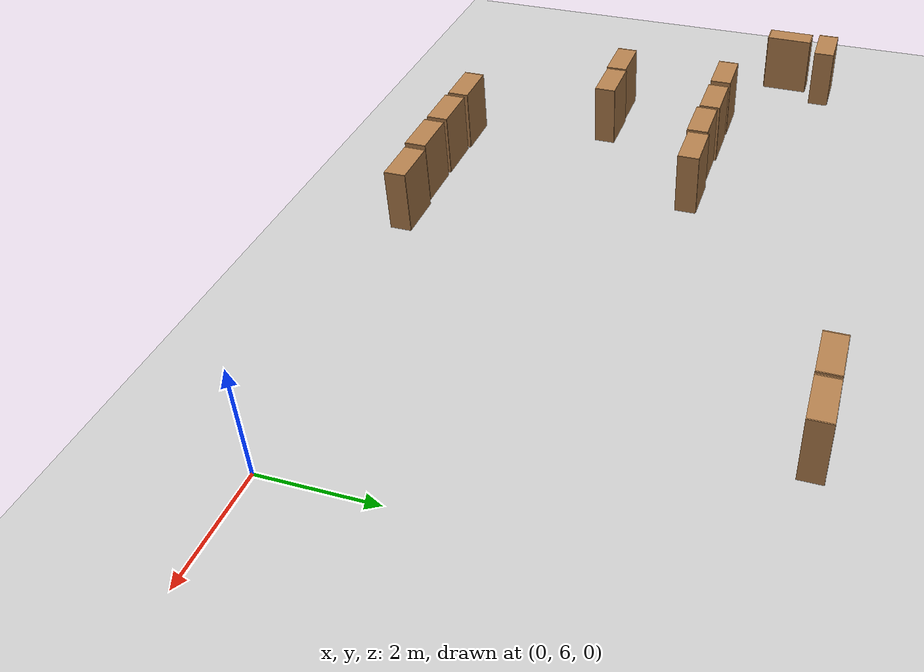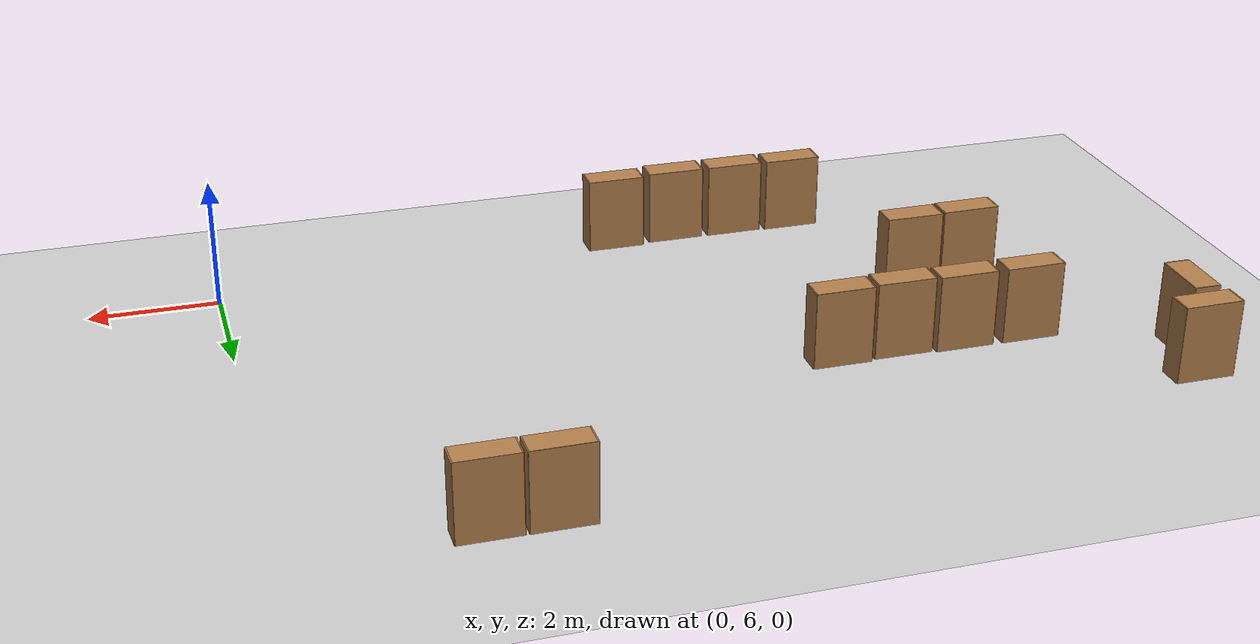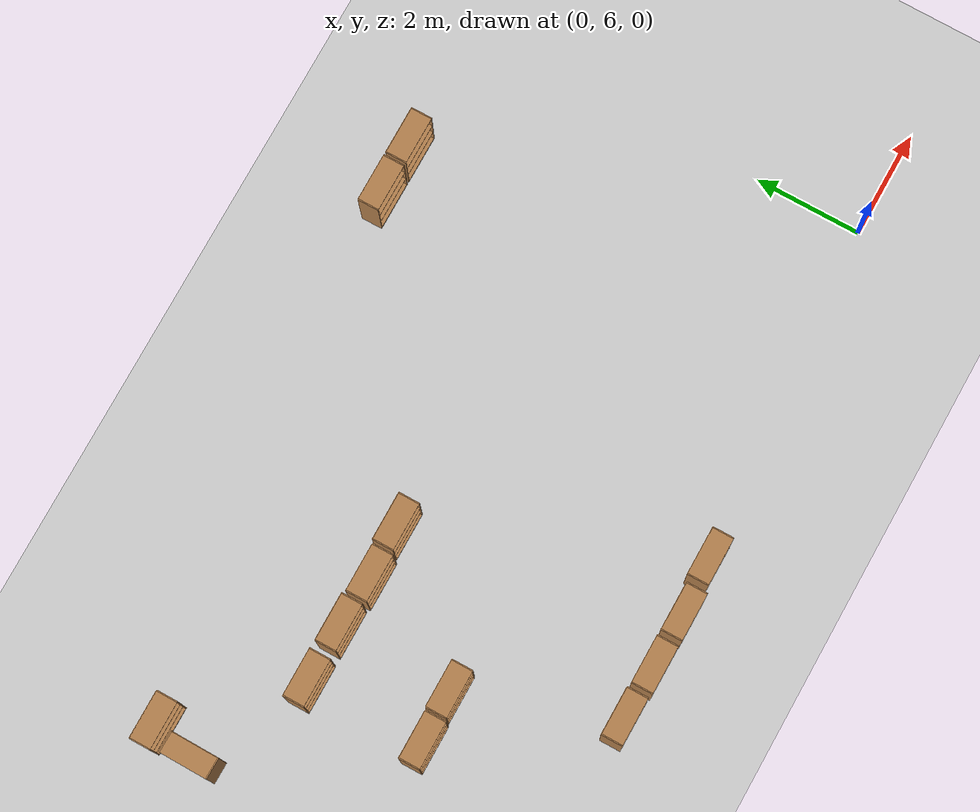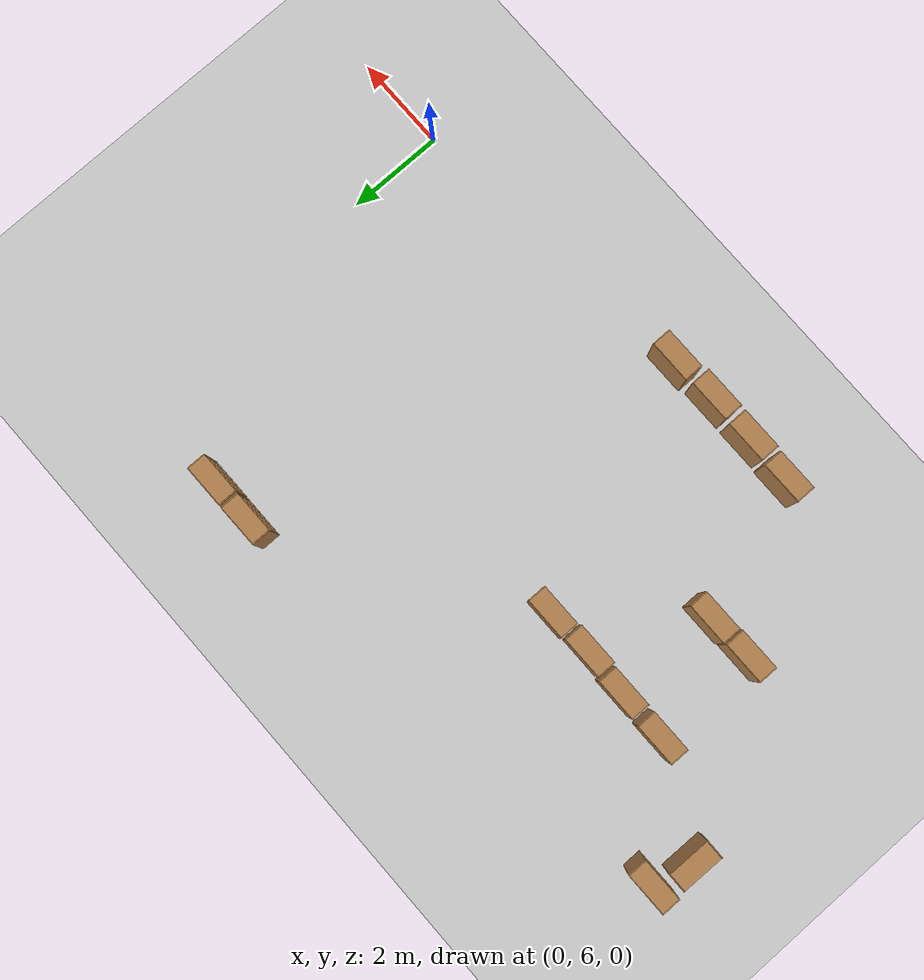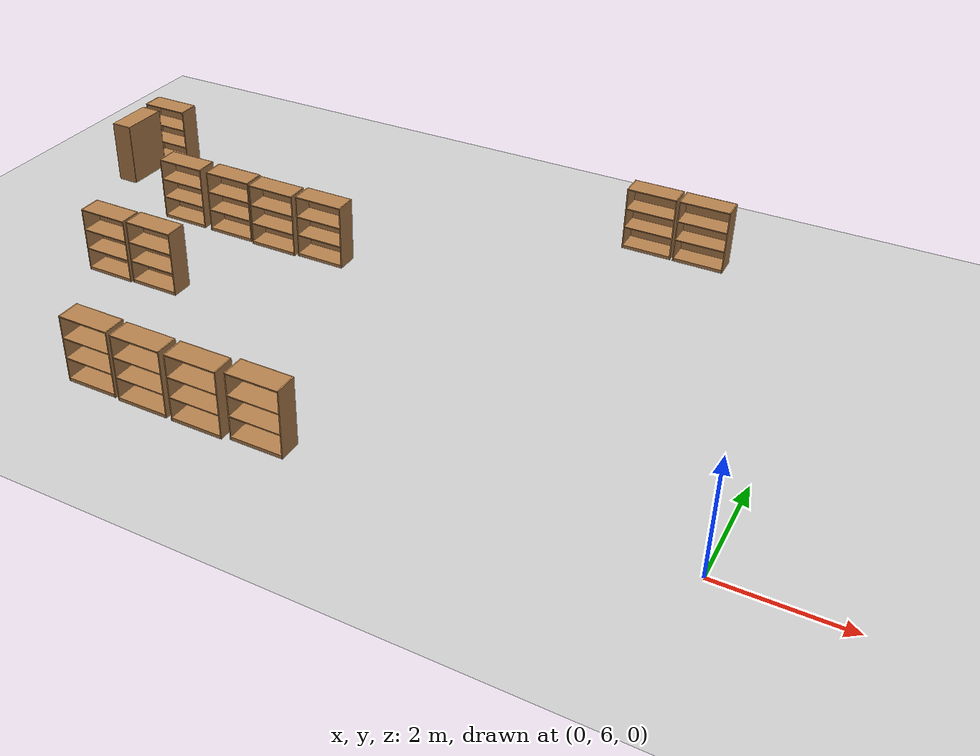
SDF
<sdf version="1.6">
 <world name="default">
  <model name="ground_plane">
   <static>1</static>
   <link name="link">
    <collision name="collision">
     <geometry><plane><normal>0 0 1</normal><size>100 100</size></plane></geometry>
     <surface>
      <contact><collide_bitmask>65535</collide_bitmask></contact>
      <friction><ode><mu>100</mu><mu2>50</mu2></ode></friction>
     </surface>
    </collision>
    <visual name="visual">
     <cast_shadows>0</cast_shadows>
     <geometry><plane><normal>0 0 1</normal><size>100 100</size></plane></geometry>
     <material>
      <script><uri>file://media/materials/scripts/gazebo.material</uri><name>Gazebo/Grey</name></script>
     </material>
    </visual>
   </link>
  </model>
  <model name="bookshelf_clone">
   <static>1</static>
   <link name="link">
    <inertial><mass>1</mass></inertial>
    <collision name="back">
     <pose>0 0.005 0.6 0 -0 0</pose>
     <geometry><box><size>0.9 0.01 1.2</size></box></geometry>
    </collision>
    <visual name="visual1">
     <pose>0 0.005 0.6 0 -0 0</pose>
     <geometry><box><size>0.9 0.01 1.2</size></box></geometry>
     <material>
      <script><uri>file://media/materials/scripts/gazebo.material</uri><name>Gazebo/Wood</name></script>
     </material>
    </visual>
    <collision name="left_side">
     <pose>0.45 -0.195 0.6 0 -0 0</pose>
     <geometry><box><size>0.02 0.4 1.2</size></box></geometry>
    </collision>
    <visual name="visual2">
     <pose>0.45 -0.195 0.6 0 -0 0</pose>
     <geometry><box><size>0.02 0.4 1.2</size></box></geometry>
     <material>
      <script><uri>file://media/materials/scripts/gazebo.material</uri><name>Gazebo/Wood</name></script>
     </material>
    </visual>
    <collision name="right_side">
     <pose>-0.45 -0.195 0.6 0 -0 0</pose>
     <geometry><box><size>0.02 0.4 1.2</size></box></geometry>
    </collision>
    <visual name="visual3">
     <pose>-0.45 -0.195 0.6 0 -0 0</pose>
     <geometry><box><size>0.02 0.4 1.2</size></box></geometry>
     <material>
      <script><uri>file://media/materials/scripts/gazebo.material</uri><name>Gazebo/Wood</name></script>
     </material>
    </visual>
    <collision name="bottom">
     <pose>0 -0.195 0.03 0 -0 0</pose>
     <geometry><box><size>0.88 0.4 0.06</size></box></geometry>
    </collision>
    <visual name="visual4">
     <pose>0 -0.195 0.03 0 -0 0</pose>
     <geometry><box><size>0.88 0.4 0.06</size></box></geometry>
     <material>
      <script><uri>file://media/materials/scripts/gazebo.material</uri><name>Gazebo/Wood</name></script>
     </material>
    </visual>
    <collision name="top">
     <pose>0 -0.195 1.19 0 -0 0</pose>
     <geometry><box><size>0.88 0.4 0.02</size></box></geometry>
    </collision>
    <visual name="visual5">
     <pose>0 -0.195 1.19 0 -0 0</pose>
     <geometry><box><size>0.88 0.4 0.02</size></box></geometry>
     <material>
      <script><uri>file://media/materials/scripts/gazebo.material</uri><name>Gazebo/Wood</name></script>
     </material>
    </visual>
    <collision name="low_shelf">
     <pose>0 -0.195 0.43 0 -0 0</pose>
     <geometry><box><size>0.88 0.4 0.02</size></box></geometry>
    </collision>
    <visual name="visual6">
     <pose>0 -0.195 0.43 0 -0 0</pose>
     <geometry><box><size>0.88 0.4 0.02</size></box></geometry>
     <material>
      <script><uri>file://media/materials/scripts/gazebo.material</uri><name>Gazebo/Wood</name></script>
     </material>
    </visual>
    <collision name="high_shelf">
     <pose>0 -0.195 0.8 0 -0 0</pose>
     <geometry><box><size>0.88 0.4 0.02</size></box></geometry>
    </collision>
    <visual name="visual7">
     <pose>0 -0.195 0.8 0 -0 0</pose>
     <geometry><box><size>0.88 0.4 0.02</size></box></geometry>
     <material>
      <script><uri>file://media/materials/scripts/gazebo.material</uri><name>Gazebo/Wood</name></script>
     </material>
    </visual>
   </link>
   <pose>-11.4672 8.45136 0 0 -0 0</pose>
  </model>
  <model name="bookshelf_clone_clone">
   <static>1</static>
   <link name="link">
    <inertial><mass>1</mass></inertial>
    <collision name="back">
     <pose>0 0.005 0.6 0 -0 0</pose>
     <geometry><box><size>0.9 0.01 1.2</size></box></geometry>
    </collision>
    <visual name="visual1">
     <pose>0 0.005 0.6 0 -0 0</pose>
     <geometry><box><size>0.9 0.01 1.2</size></box></geometry>
     <material>
      <script><uri>file://media/materials/scripts/gazebo.material</uri><name>Gazebo/Wood</name></script>
     </material>
    </visual>
    <collision name="left_side">
     <pose>0.45 -0.195 0.6 0 -0 0</pose>
     <geometry><box><size>0.02 0.4 1.2</size></box></geometry>
    </collision>
    <visual name="visual2">
     <pose>0.45 -0.195 0.6 0 -0 0</pose>
     <geometry><box><size>0.02 0.4 1.2</size></box></geometry>
     <material>
      <script><uri>file://media/materials/scripts/gazebo.material</uri><name>Gazebo/Wood</name></script>
     </material>
    </visual>
    <collision name="right_side">
     <pose>-0.45 -0.195 0.6 0 -0 0</pose>
     <geometry><box><size>0.02 0.4 1.2</size></box></geometry>
    </collision>
    <visual name="visual3">
     <pose>-0.45 -0.195 0.6 0 -0 0</pose>
     <geometry><box><size>0.02 0.4 1.2</size></box></geometry>
     <material>
      <script><uri>file://media/materials/scripts/gazebo.material</uri><name>Gazebo/Wood</name></script>
     </material>
    </visual>
    <collision name="bottom">
     <pose>0 -0.195 0.03 0 -0 0</pose>
     <geometry><box><size>0.88 0.4 0.06</size></box></geometry>
    </collision>
    <visual name="visual4">
     <pose>0 -0.195 0.03 0 -0 0</pose>
     <geometry><box><size>0.88 0.4 0.06</size></box></geometry>
     <material>
      <script><uri>file://media/materials/scripts/gazebo.material</uri><name>Gazebo/Wood</name></script>
     </material>
    </visual>
    <collision name="top">
     <pose>0 -0.195 1.19 0 -0 0</pose>
     <geometry><box><size>0.88 0.4 0.02</size></box></geometry>
    </collision>
    <visual name="visual5">
     <pose>0 -0.195 1.19 0 -0 0</pose>
     <geometry><box><size>0.88 0.4 0.02</size></box></geometry>
     <material>
      <script><uri>file://media/materials/scripts/gazebo.material</uri><name>Gazebo/Wood</name></script>
     </material>
    </visual>
    <collision name="low_shelf">
     <pose>0 -0.195 0.43 0 -0 0</pose>
     <geometry><box><size>0.88 0.4 0.02</size></box></geometry>
    </collision>
    <visual name="visual6">
     <pose>0 -0.195 0.43 0 -0 0</pose>
     <geometry><box><size>0.88 0.4 0.02</size></box></geometry>
     <material>
      <script><uri>file://media/materials/scripts/gazebo.material</uri><name>Gazebo/Wood</name></script>
     </material>
    </visual>
    <collision name="high_shelf">
     <pose>0 -0.195 0.8 0 -0 0</pose>
     <geometry><box><size>0.88 0.4 0.02</size></box></geometry>
    </collision>
    <visual name="visual7">
     <pose>0 -0.195 0.8 0 -0 0</pose>
     <geometry><box><size>0.88 0.4 0.02</size></box></geometry>
     <material>
      <script><uri>file://media/materials/scripts/gazebo.material</uri><name>Gazebo/Wood</name></script>
     </material>
    </visual>
   </link>
   <pose>-10.5181 8.47539 0 0 -0 0</pose>
  </model>
  <model name="bookshelf_clone_0">
   <static>1</static>
   <link name="link">
    <inertial><mass>1</mass></inertial>
    <collision name="back">
     <pose>0 0.005 0.6 0 -0 0</pose>
     <geometry><box><size>0.9 0.01 1.2</size></box></geometry>
    </collision>
    <visual name="visual1">
     <pose>0 0.005 0.6 0 -0 0</pose>
     <geometry><box><size>0.9 0.01 1.2</size></box></geometry>
     <material>
      <script><uri>file://media/materials/scripts/gazebo.material</uri><name>Gazebo/Wood</name></script>
     </material>
    </visual>
    <collision name="left_side">
     <pose>0.45 -0.195 0.6 0 -0 0</pose>
     <geometry><box><size>0.02 0.4 1.2</size></box></geometry>
    </collision>
    <visual name="visual2">
     <pose>0.45 -0.195 0.6 0 -0 0</pose>
     <geometry><box><size>0.02 0.4 1.2</size></box></geometry>
     <material>
      <script><uri>file://media/materials/scripts/gazebo.material</uri><name>Gazebo/Wood</name></script>
     </material>
    </visual>
    <collision name="right_side">
     <pose>-0.45 -0.195 0.6 0 -0 0</pose>
     <geometry><box><size>0.02 0.4 1.2</size></box></geometry>
    </collision>
    <visual name="visual3">
     <pose>-0.45 -0.195 0.6 0 -0 0</pose>
     <geometry><box><size>0.02 0.4 1.2</size></box></geometry>
     <material>
      <script><uri>file://media/materials/scripts/gazebo.material</uri><name>Gazebo/Wood</name></script>
     </material>
    </visual>
    <collision name="bottom">
     <pose>0 -0.195 0.03 0 -0 0</pose>
     <geometry><box><size>0.88 0.4 0.06</size></box></geometry>
    </collision>
    <visual name="visual4">
     <pose>0 -0.195 0.03 0 -0 0</pose>
     <geometry><box><size>0.88 0.4 0.06</size></box></geometry>
     <material>
      <script><uri>file://media/materials/scripts/gazebo.material</uri><name>Gazebo/Wood</name></script>
     </material>
    </visual>
    <collision name="top">
     <pose>0 -0.195 1.19 0 -0 0</pose>
     <geometry><box><size>0.88 0.4 0.02</size></box></geometry>
    </collision>
    <visual name="visual5">
     <pose>0 -0.195 1.19 0 -0 0</pose>
     <geometry><box><size>0.88 0.4 0.02</size></box></geometry>
     <material>
      <script><uri>file://media/materials/scripts/gazebo.material</uri><name>Gazebo/Wood</name></script>
     </material>
    </visual>
    <collision name="low_shelf">
     <pose>0 -0.195 0.43 0 -0 0</pose>
     <geometry><box><size>0.88 0.4 0.02</size></box></geometry>
    </collision>
    <visual name="visual6">
     <pose>0 -0.195 0.43 0 -0 0</pose>
     <geometry><box><size>0.88 0.4 0.02</size></box></geometry>
     <material>
      <script><uri>file://media/materials/scripts/gazebo.material</uri><name>Gazebo/Wood</name></script>
     </material>
    </visual>
    <collision name="high_shelf">
     <pose>0 -0.195 0.8 0 -0 0</pose>
     <geometry><box><size>0.88 0.4 0.02</size></box></geometry>
    </collision>
    <visual name="visual7">
     <pose>0 -0.195 0.8 0 -0 0</pose>
     <geometry><box><size>0.88 0.4 0.02</size></box></geometry>
     <material>
      <script><uri>file://media/materials/scripts/gazebo.material</uri><name>Gazebo/Wood</name></script>
     </material>
    </visual>
   </link>
   <pose>-13.3299 12.5056 0 0 -0 0</pose>
  </model>
  <model name="bookshelf_clone_0_clone">
   <static>1</static>
   <link name="link">
    <inertial><mass>1</mass></inertial>
    <collision name="back">
     <pose>0 0.005 0.6 0 -0 0</pose>
     <geometry><box><size>0.9 0.01 1.2</size></box></geometry>
    </collision>
    <visual name="visual1">
     <pose>0 0.005 0.6 0 -0 0</pose>
     <geometry><box><size>0.9 0.01 1.2</size></box></geometry>
     <material>
      <script><uri>file://media/materials/scripts/gazebo.material</uri><name>Gazebo/Wood</name></script>
     </material>
    </visual>
    <collision name="left_side">
     <pose>0.45 -0.195 0.6 0 -0 0</pose>
     <geometry><box><size>0.02 0.4 1.2</size></box></geometry>
    </collision>
    <visual name="visual2">
     <pose>0.45 -0.195 0.6 0 -0 0</pose>
     <geometry><box><size>0.02 0.4 1.2</size></box></geometry>
     <material>
      <script><uri>file://media/materials/scripts/gazebo.material</uri><name>Gazebo/Wood</name></script>
     </material>
    </visual>
    <collision name="right_side">
     <pose>-0.45 -0.195 0.6 0 -0 0</pose>
     <geometry><box><size>0.02 0.4 1.2</size></box></geometry>
    </collision>
    <visual name="visual3">
     <pose>-0.45 -0.195 0.6 0 -0 0</pose>
     <geometry><box><size>0.02 0.4 1.2</size></box></geometry>
     <material>
      <script><uri>file://media/materials/scripts/gazebo.material</uri><name>Gazebo/Wood</name></script>
     </material>
    </visual>
    <collision name="bottom">
     <pose>0 -0.195 0.03 0 -0 0</pose>
     <geometry><box><size>0.88 0.4 0.06</size></box></geometry>
    </collision>
    <visual name="visual4">
     <pose>0 -0.195 0.03 0 -0 0</pose>
     <geometry><box><size>0.88 0.4 0.06</size></box></geometry>
     <material>
      <script><uri>file://media/materials/scripts/gazebo.material</uri><name>Gazebo/Wood</name></script>
     </material>
    </visual>
    <collision name="top">
     <pose>0 -0.195 1.19 0 -0 0</pose>
     <geometry><box><size>0.88 0.4 0.02</size></box></geometry>
    </collision>
    <visual name="visual5">
     <pose>0 -0.195 1.19 0 -0 0</pose>
     <geometry><box><size>0.88 0.4 0.02</size></box></geometry>
     <material>
      <script><uri>file://media/materials/scripts/gazebo.material</uri><name>Gazebo/Wood</name></script>
     </material>
    </visual>
    <collision name="low_shelf">
     <pose>0 -0.195 0.43 0 -0 0</pose>
     <geometry><box><size>0.88 0.4 0.02</size></box></geometry>
    </collision>
    <visual name="visual6">
     <pose>0 -0.195 0.43 0 -0 0</pose>
     <geometry><box><size>0.88 0.4 0.02</size></box></geometry>
     <material>
      <script><uri>file://media/materials/scripts/gazebo.material</uri><name>Gazebo/Wood</name></script>
     </material>
    </visual>
    <collision name="high_shelf">
     <pose>0 -0.195 0.8 0 -0 0</pose>
     <geometry><box><size>0.88 0.4 0.02</size></box></geometry>
    </collision>
    <visual name="visual7">
     <pose>0 -0.195 0.8 0 -0 0</pose>
     <geometry><box><size>0.88 0.4 0.02</size></box></geometry>
     <material>
      <script><uri>file://media/materials/scripts/gazebo.material</uri><name>Gazebo/Wood</name></script>
     </material>
    </visual>
   </link>
   <pose>-13.352 11.5068 0 0 0 -1.58271</pose>
  </model>
  <model name="bookshelf_clone_clone_clone">
   <static>1</static>
   <link name="link">
    <inertial><mass>1</mass></inertial>
    <collision name="back">
     <pose>0 0.005 0.6 0 -0 0</pose>
     <geometry><box><size>0.9 0.01 1.2</size></box></geometry>
    </collision>
    <visual name="visual1">
     <pose>0 0.005 0.6 0 -0 0</pose>
     <geometry><box><size>0.9 0.01 1.2</size></box></geometry>
     <material>
      <script><uri>file://media/materials/scripts/gazebo.material</uri><name>Gazebo/Wood</name></script>
     </material>
    </visual>
    <collision name="left_side">
     <pose>0.45 -0.195 0.6 0 -0 0</pose>
     <geometry><box><size>0.02 0.4 1.2</size></box></geometry>
    </collision>
    <visual name="visual2">
     <pose>0.45 -0.195 0.6 0 -0 0</pose>
     <geometry><box><size>0.02 0.4 1.2</size></box></geometry>
     <material>
      <script><uri>file://media/materials/scripts/gazebo.material</uri><name>Gazebo/Wood</name></script>
     </material>
    </visual>
    <collision name="right_side">
     <pose>-0.45 -0.195 0.6 0 -0 0</pose>
     <geometry><box><size>0.02 0.4 1.2</size></box></geometry>
    </collision>
    <visual name="visual3">
     <pose>-0.45 -0.195 0.6 0 -0 0</pose>
     <geometry><box><size>0.02 0.4 1.2</size></box></geometry>
     <material>
      <script><uri>file://media/materials/scripts/gazebo.material</uri><name>Gazebo/Wood</name></script>
     </material>
    </visual>
    <collision name="bottom">
     <pose>0 -0.195 0.03 0 -0 0</pose>
     <geometry><box><size>0.88 0.4 0.06</size></box></geometry>
    </collision>
    <visual name="visual4">
     <pose>0 -0.195 0.03 0 -0 0</pose>
     <geometry><box><size>0.88 0.4 0.06</size></box></geometry>
     <material>
      <script><uri>file://media/materials/scripts/gazebo.material</uri><name>Gazebo/Wood</name></script>
     </material>
    </visual>
    <collision name="top">
     <pose>0 -0.195 1.19 0 -0 0</pose>
     <geometry><box><size>0.88 0.4 0.02</size></box></geometry>
    </collision>
    <visual name="visual5">
     <pose>0 -0.195 1.19 0 -0 0</pose>
     <geometry><box><size>0.88 0.4 0.02</size></box></geometry>
     <material>
      <script><uri>file://media/materials/scripts/gazebo.material</uri><name>Gazebo/Wood</name></script>
     </material>
    </visual>
    <collision name="low_shelf">
     <pose>0 -0.195 0.43 0 -0 0</pose>
     <geometry><box><size>0.88 0.4 0.02</size></box></geometry>
    </collision>
    <visual name="visual6">
     <pose>0 -0.195 0.43 0 -0 0</pose>
     <geometry><box><size>0.88 0.4 0.02</size></box></geometry>
     <material>
      <script><uri>file://media/materials/scripts/gazebo.material</uri><name>Gazebo/Wood</name></script>
     </material>
    </visual>
    <collision name="high_shelf">
     <pose>0 -0.195 0.8 0 -0 0</pose>
     <geometry><box><size>0.88 0.4 0.02</size></box></geometry>
    </collision>
    <visual name="visual7">
     <pose>0 -0.195 0.8 0 -0 0</pose>
     <geometry><box><size>0.88 0.4 0.02</size></box></geometry>
     <material>
      <script><uri>file://media/materials/scripts/gazebo.material</uri><name>Gazebo/Wood</name></script>
     </material>
    </visual>
   </link>
   <pose>-3.50081 13.74 0 0 -0 0</pose>
  </model>
  <model name="bookshelf_clone_clone_clone_0">
   <static>1</static>
   <link name="link">
    <inertial><mass>1</mass></inertial>
    <collision name="back">
     <pose>0 0.005 0.6 0 -0 0</pose>
     <geometry><box><size>0.9 0.01 1.2</size></box></geometry>
    </collision>
    <visual name="visual1">
     <pose>0 0.005 0.6 0 -0 0</pose>
     <geometry><box><size>0.9 0.01 1.2</size></box></geometry>
     <material>
      <script><uri>file://media/materials/scripts/gazebo.material</uri><name>Gazebo/Wood</name></script>
     </material>
    </visual>
    <collision name="left_side">
     <pose>0.45 -0.195 0.6 0 -0 0</pose>
     <geometry><box><size>0.02 0.4 1.2</size></box></geometry>
    </collision>
    <visual name="visual2">
     <pose>0.45 -0.195 0.6 0 -0 0</pose>
     <geometry><box><size>0.02 0.4 1.2</size></box></geometry>
     <material>
      <script><uri>file://media/materials/scripts/gazebo.material</uri><name>Gazebo/Wood</name></script>
     </material>
    </visual>
    <collision name="right_side">
     <pose>-0.45 -0.195 0.6 0 -0 0</pose>
     <geometry><box><size>0.02 0.4 1.2</size></box></geometry>
    </collision>
    <visual name="visual3">
     <pose>-0.45 -0.195 0.6 0 -0 0</pose>
     <geometry><box><size>0.02 0.4 1.2</size></box></geometry>
     <material>
      <script><uri>file://media/materials/scripts/gazebo.material</uri><name>Gazebo/Wood</name></script>
     </material>
    </visual>
    <collision name="bottom">
     <pose>0 -0.195 0.03 0 -0 0</pose>
     <geometry><box><size>0.88 0.4 0.06</size></box></geometry>
    </collision>
    <visual name="visual4">
     <pose>0 -0.195 0.03 0 -0 0</pose>
     <geometry><box><size>0.88 0.4 0.06</size></box></geometry>
     <material>
      <script><uri>file://media/materials/scripts/gazebo.material</uri><name>Gazebo/Wood</name></script>
     </material>
    </visual>
    <collision name="top">
     <pose>0 -0.195 1.19 0 -0 0</pose>
     <geometry><box><size>0.88 0.4 0.02</size></box></geometry>
    </collision>
    <visual name="visual5">
     <pose>0 -0.195 1.19 0 -0 0</pose>
     <geometry><box><size>0.88 0.4 0.02</size></box></geometry>
     <material>
      <script><uri>file://media/materials/scripts/gazebo.material</uri><name>Gazebo/Wood</name></script>
     </material>
    </visual>
    <collision name="low_shelf">
     <pose>0 -0.195 0.43 0 -0 0</pose>
     <geometry><box><size>0.88 0.4 0.02</size></box></geometry>
    </collision>
    <visual name="visual6">
     <pose>0 -0.195 0.43 0 -0 0</pose>
     <geometry><box><size>0.88 0.4 0.02</size></box></geometry>
     <material>
      <script><uri>file://media/materials/scripts/gazebo.material</uri><name>Gazebo/Wood</name></script>
     </material>
    </visual>
    <collision name="high_shelf">
     <pose>0 -0.195 0.8 0 -0 0</pose>
     <geometry><box><size>0.88 0.4 0.02</size></box></geometry>
    </collision>
    <visual name="visual7">
     <pose>0 -0.195 0.8 0 -0 0</pose>
     <geometry><box><size>0.88 0.4 0.02</size></box></geometry>
     <material>
      <script><uri>file://media/materials/scripts/gazebo.material</uri><name>Gazebo/Wood</name></script>
     </material>
    </visual>
   </link>
   <pose>-2.53899 13.7368 0 0 -0 0</pose>
  </model>
  <model name="bookshelf_clone_clone_clone_3">
   <static>1</static>
   <link name="link">
    <inertial><mass>1</mass></inertial>
    <collision name="back">
     <pose>0 0.005 0.6 0 -0 0</pose>
     <geometry><box><size>0.9 0.01 1.2</size></box></geometry>
    </collision>
    <visual name="visual1">
     <pose>0 0.005 0.6 0 -0 0</pose>
     <geometry><box><size>0.9 0.01 1.2</size></box></geometry>
     <material>
      <script><uri>file://media/materials/scripts/gazebo.material</uri><name>Gazebo/Wood</name></script>
     </material>
    </visual>
    <collision name="left_side">
     <pose>0.45 -0.195 0.6 0 -0 0</pose>
     <geometry><box><size>0.02 0.4 1.2</size></box></geometry>
    </collision>
    <visual name="visual2">
     <pose>0.45 -0.195 0.6 0 -0 0</pose>
     <geometry><box><size>0.02 0.4 1.2</size></box></geometry>
     <material>
      <script><uri>file://media/materials/scripts/gazebo.material</uri><name>Gazebo/Wood</name></script>
     </material>
    </visual>
    <collision name="right_side">
     <pose>-0.45 -0.195 0.6 0 -0 0</pose>
     <geometry><box><size>0.02 0.4 1.2</size></box></geometry>
    </collision>
    <visual name="visual3">
     <pose>-0.45 -0.195 0.6 0 -0 0</pose>
     <geometry><box><size>0.02 0.4 1.2</size></box></geometry>
     <material>
      <script><uri>file://media/materials/scripts/gazebo.material</uri><name>Gazebo/Wood</name></script>
     </material>
    </visual>
    <collision name="bottom">
     <pose>0 -0.195 0.03 0 -0 0</pose>
     <geometry><box><size>0.88 0.4 0.06</size></box></geometry>
    </collision>
    <visual name="visual4">
     <pose>0 -0.195 0.03 0 -0 0</pose>
     <geometry><box><size>0.88 0.4 0.06</size></box></geometry>
     <material>
      <script><uri>file://media/materials/scripts/gazebo.material</uri><name>Gazebo/Wood</name></script>
     </material>
    </visual>
    <collision name="top">
     <pose>0 -0.195 1.19 0 -0 0</pose>
     <geometry><box><size>0.88 0.4 0.02</size></box></geometry>
    </collision>
    <visual name="visual5">
     <pose>0 -0.195 1.19 0 -0 0</pose>
     <geometry><box><size>0.88 0.4 0.02</size></box></geometry>
     <material>
      <script><uri>file://media/materials/scripts/gazebo.material</uri><name>Gazebo/Wood</name></script>
     </material>
    </visual>
    <collision name="low_shelf">
     <pose>0 -0.195 0.43 0 -0 0</pose>
     <geometry><box><size>0.88 0.4 0.02</size></box></geometry>
    </collision>
    <visual name="visual6">
     <pose>0 -0.195 0.43 0 -0 0</pose>
     <geometry><box><size>0.88 0.4 0.02</size></box></geometry>
     <material>
      <script><uri>file://media/materials/scripts/gazebo.material</uri><name>Gazebo/Wood</name></script>
     </material>
    </visual>
    <collision name="high_shelf">
     <pose>0 -0.195 0.8 0 -0 0</pose>
     <geometry><box><size>0.88 0.4 0.02</size></box></geometry>
    </collision>
    <visual name="visual7">
     <pose>0 -0.195 0.8 0 -0 0</pose>
     <geometry><box><size>0.88 0.4 0.02</size></box></geometry>
     <material>
      <script><uri>file://media/materials/scripts/gazebo.material</uri><name>Gazebo/Wood</name></script>
     </material>
    </visual>
   </link>
   <pose>-6.46841 5.73352 0 0 -0 0</pose>
  </model>
  <model name="bookshelf_clone_clone_clone_4">
   <static>1</static>
   <link name="link">
    <inertial><mass>1</mass></inertial>
    <collision name="back">
     <pose>0 0.005 0.6 0 -0 0</pose>
     <geometry><box><size>0.9 0.01 1.2</size></box></geometry>
    </collision>
    <visual name="visual1">
     <pose>0 0.005 0.6 0 -0 0</pose>
     <geometry><box><size>0.9 0.01 1.2</size></box></geometry>
     <material>
      <script><uri>file://media/materials/scripts/gazebo.material</uri><name>Gazebo/Wood</name></script>
     </material>
    </visual>
    <collision name="left_side">
     <pose>0.45 -0.195 0.6 0 -0 0</pose>
     <geometry><box><size>0.02 0.4 1.2</size></box></geometry>
    </collision>
    <visual name="visual2">
     <pose>0.45 -0.195 0.6 0 -0 0</pose>
     <geometry><box><size>0.02 0.4 1.2</size></box></geometry>
     <material>
      <script><uri>file://media/materials/scripts/gazebo.material</uri><name>Gazebo/Wood</name></script>
     </material>
    </visual>
    <collision name="right_side">
     <pose>-0.45 -0.195 0.6 0 -0 0</pose>
     <geometry><box><size>0.02 0.4 1.2</size></box></geometry>
    </collision>
    <visual name="visual3">
     <pose>-0.45 -0.195 0.6 0 -0 0</pose>
     <geometry><box><size>0.02 0.4 1.2</size></box></geometry>
     <material>
      <script><uri>file://media/materials/scripts/gazebo.material</uri><name>Gazebo/Wood</name></script>
     </material>
    </visual>
    <collision name="bottom">
     <pose>0 -0.195 0.03 0 -0 0</pose>
     <geometry><box><size>0.88 0.4 0.06</size></box></geometry>
    </collision>
    <visual name="visual4">
     <pose>0 -0.195 0.03 0 -0 0</pose>
     <geometry><box><size>0.88 0.4 0.06</size></box></geometry>
     <material>
      <script><uri>file://media/materials/scripts/gazebo.material</uri><name>Gazebo/Wood</name></script>
     </material>
    </visual>
    <collision name="top">
     <pose>0 -0.195 1.19 0 -0 0</pose>
     <geometry><box><size>0.88 0.4 0.02</size></box></geometry>
    </collision>
    <visual name="visual5">
     <pose>0 -0.195 1.19 0 -0 0</pose>
     <geometry><box><size>0.88 0.4 0.02</size></box></geometry>
     <material>
      <script><uri>file://media/materials/scripts/gazebo.material</uri><name>Gazebo/Wood</name></script>
     </material>
    </visual>
    <collision name="low_shelf">
     <pose>0 -0.195 0.43 0 -0 0</pose>
     <geometry><box><size>0.88 0.4 0.02</size></box></geometry>
    </collision>
    <visual name="visual6">
     <pose>0 -0.195 0.43 0 -0 0</pose>
     <geometry><box><size>0.88 0.4 0.02</size></box></geometry>
     <material>
      <script><uri>file://media/materials/scripts/gazebo.material</uri><name>Gazebo/Wood</name></script>
     </material>
    </visual>
    <collision name="high_shelf">
     <pose>0 -0.195 0.8 0 -0 0</pose>
     <geometry><box><size>0.88 0.4 0.02</size></box></geometry>
    </collision>
    <visual name="visual7">
     <pose>0 -0.195 0.8 0 -0 0</pose>
     <geometry><box><size>0.88 0.4 0.02</size></box></geometry>
     <material>
      <script><uri>file://media/materials/scripts/gazebo.material</uri><name>Gazebo/Wood</name></script>
     </material>
    </visual>
   </link>
   <pose>-7.50045 5.67638 0 0 -0 0</pose>
  </model>
  <model name="bookshelf_clone_clone_clone_5">
   <static>1</static>
   <link name="link">
    <inertial><mass>1</mass></inertial>
    <collision name="back">
     <pose>0 0.005 0.6 0 -0 0</pose>
     <geometry><box><size>0.9 0.01 1.2</size></box></geometry>
    </collision>
    <visual name="visual1">
     <pose>0 0.005 0.6 0 -0 0</pose>
     <geometry><box><size>0.9 0.01 1.2</size></box></geometry>
     <material>
      <script><uri>file://media/materials/scripts/gazebo.material</uri><name>Gazebo/Wood</name></script>
     </material>
    </visual>
    <collision name="left_side">
     <pose>0.45 -0.195 0.6 0 -0 0</pose>
     <geometry><box><size>0.02 0.4 1.2</size></box></geometry>
    </collision>
    <visual name="visual2">
     <pose>0.45 -0.195 0.6 0 -0 0</pose>
     <geometry><box><size>0.02 0.4 1.2</size></box></geometry>
     <material>
      <script><uri>file://media/materials/scripts/gazebo.material</uri><name>Gazebo/Wood</name></script>
     </material>
    </visual>
    <collision name="right_side">
     <pose>-0.45 -0.195 0.6 0 -0 0</pose>
     <geometry><box><size>0.02 0.4 1.2</size></box></geometry>
    </collision>
    <visual name="visual3">
     <pose>-0.45 -0.195 0.6 0 -0 0</pose>
     <geometry><box><size>0.02 0.4 1.2</size></box></geometry>
     <material>
      <script><uri>file://media/materials/scripts/gazebo.material</uri><name>Gazebo/Wood</name></script>
     </material>
    </visual>
    <collision name="bottom">
     <pose>0 -0.195 0.03 0 -0 0</pose>
     <geometry><box><size>0.88 0.4 0.06</size></box></geometry>
    </collision>
    <visual name="visual4">
     <pose>0 -0.195 0.03 0 -0 0</pose>
     <geometry><box><size>0.88 0.4 0.06</size></box></geometry>
     <material>
      <script><uri>file://media/materials/scripts/gazebo.material</uri><name>Gazebo/Wood</name></script>
     </material>
    </visual>
    <collision name="top">
     <pose>0 -0.195 1.19 0 -0 0</pose>
     <geometry><box><size>0.88 0.4 0.02</size></box></geometry>
    </collision>
    <visual name="visual5">
     <pose>0 -0.195 1.19 0 -0 0</pose>
     <geometry><box><size>0.88 0.4 0.02</size></box></geometry>
     <material>
      <script><uri>file://media/materials/scripts/gazebo.material</uri><name>Gazebo/Wood</name></script>
     </material>
    </visual>
    <collision name="low_shelf">
     <pose>0 -0.195 0.43 0 -0 0</pose>
     <geometry><box><size>0.88 0.4 0.02</size></box></geometry>
    </collision>
    <visual name="visual6">
     <pose>0 -0.195 0.43 0 -0 0</pose>
     <geometry><box><size>0.88 0.4 0.02</size></box></geometry>
     <material>
      <script><uri>file://media/materials/scripts/gazebo.material</uri><name>Gazebo/Wood</name></script>
     </material>
    </visual>
    <collision name="high_shelf">
     <pose>0 -0.195 0.8 0 -0 0</pose>
     <geometry><box><size>0.88 0.4 0.02</size></box></geometry>
    </collision>
    <visual name="visual7">
     <pose>0 -0.195 0.8 0 -0 0</pose>
     <geometry><box><size>0.88 0.4 0.02</size></box></geometry>
     <material>
      <script><uri>file://media/materials/scripts/gazebo.material</uri><name>Gazebo/Wood</name></script>
     </material>
    </visual>
   </link>
   <pose>-8.5121 5.6838 0 0 -0 0</pose>
  </model>
  <model name="bookshelf_clone_clone_clone_6">
   <static>1</static>
   <link name="link">
    <inertial><mass>1</mass></inertial>
    <collision name="back">
     <pose>0 0.005 0.6 0 -0 0</pose>
     <geometry><box><size>0.9 0.01 1.2</size></box></geometry>
    </collision>
    <visual name="visual1">
     <pose>0 0.005 0.6 0 -0 0</pose>
     <geometry><box><size>0.9 0.01 1.2</size></box></geometry>
     <material>
      <script><uri>file://media/materials/scripts/gazebo.material</uri><name>Gazebo/Wood</name></script>
     </material>
    </visual>
    <collision name="left_side">
     <pose>0.45 -0.195 0.6 0 -0 0</pose>
     <geometry><box><size>0.02 0.4 1.2</size></box></geometry>
    </collision>
    <visual name="visual2">
     <pose>0.45 -0.195 0.6 0 -0 0</pose>
     <geometry><box><size>0.02 0.4 1.2</size></box></geometry>
     <material>
      <script><uri>file://media/materials/scripts/gazebo.material</uri><name>Gazebo/Wood</name></script>
     </material>
    </visual>
    <collision name="right_side">
     <pose>-0.45 -0.195 0.6 0 -0 0</pose>
     <geometry><box><size>0.02 0.4 1.2</size></box></geometry>
    </collision>
    <visual name="visual3">
     <pose>-0.45 -0.195 0.6 0 -0 0</pose>
     <geometry><box><size>0.02 0.4 1.2</size></box></geometry>
     <material>
      <script><uri>file://media/materials/scripts/gazebo.material</uri><name>Gazebo/Wood</name></script>
     </material>
    </visual>
    <collision name="bottom">
     <pose>0 -0.195 0.03 0 -0 0</pose>
     <geometry><box><size>0.88 0.4 0.06</size></box></geometry>
    </collision>
    <visual name="visual4">
     <pose>0 -0.195 0.03 0 -0 0</pose>
     <geometry><box><size>0.88 0.4 0.06</size></box></geometry>
     <material>
      <script><uri>file://media/materials/scripts/gazebo.material</uri><name>Gazebo/Wood</name></script>
     </material>
    </visual>
    <collision name="top">
     <pose>0 -0.195 1.19 0 -0 0</pose>
     <geometry><box><size>0.88 0.4 0.02</size></box></geometry>
    </collision>
    <visual name="visual5">
     <pose>0 -0.195 1.19 0 -0 0</pose>
     <geometry><box><size>0.88 0.4 0.02</size></box></geometry>
     <material>
      <script><uri>file://media/materials/scripts/gazebo.material</uri><name>Gazebo/Wood</name></script>
     </material>
    </visual>
    <collision name="low_shelf">
     <pose>0 -0.195 0.43 0 -0 0</pose>
     <geometry><box><size>0.88 0.4 0.02</size></box></geometry>
    </collision>
    <visual name="visual6">
     <pose>0 -0.195 0.43 0 -0 0</pose>
     <geometry><box><size>0.88 0.4 0.02</size></box></geometry>
     <material>
      <script><uri>file://media/materials/scripts/gazebo.material</uri><name>Gazebo/Wood</name></script>
     </material>
    </visual>
    <collision name="high_shelf">
     <pose>0 -0.195 0.8 0 -0 0</pose>
     <geometry><box><size>0.88 0.4 0.02</size></box></geometry>
    </collision>
    <visual name="visual7">
     <pose>0 -0.195 0.8 0 -0 0</pose>
     <geometry><box><size>0.88 0.4 0.02</size></box></geometry>
     <material>
      <script><uri>file://media/materials/scripts/gazebo.material</uri><name>Gazebo/Wood</name></script>
     </material>
    </visual>
   </link>
   <pose>-9.50936 5.71186 0 0 -0 0</pose>
  </model>
  <model name="bookshelf_clone_clone_0">
   <static>1</static>
   <link name="link">
    <inertial><mass>1</mass></inertial>
    <collision name="back">
     <pose>0 0.005 0.6 0 -0 0</pose>
     <geometry><box><size>0.9 0.01 1.2</size></box></geometry>
    </collision>
    <visual name="visual1">
     <pose>0 0.005 0.6 0 -0 0</pose>
     <geometry><box><size>0.9 0.01 1.2</size></box></geometry>
     <material>
      <script><uri>file://media/materials/scripts/gazebo.material</uri><name>Gazebo/Wood</name></script>
     </material>
    </visual>
    <collision name="left_side">
     <pose>0.45 -0.195 0.6 0 -0 0</pose>
     <geometry><box><size>0.02 0.4 1.2</size></box></geometry>
    </collision>
    <visual name="visual2">
     <pose>0.45 -0.195 0.6 0 -0 0</pose>
     <geometry><box><size>0.02 0.4 1.2</size></box></geometry>
     <material>
      <script><uri>file://media/materials/scripts/gazebo.material</uri><name>Gazebo/Wood</name></script>
     </material>
    </visual>
    <collision name="right_side">
     <pose>-0.45 -0.195 0.6 0 -0 0</pose>
     <geometry><box><size>0.02 0.4 1.2</size></box></geometry>
    </collision>
    <visual name="visual3">
     <pose>-0.45 -0.195 0.6 0 -0 0</pose>
     <geometry><box><size>0.02 0.4 1.2</size></box></geometry>
     <material>
      <script><uri>file://media/materials/scripts/gazebo.material</uri><name>Gazebo/Wood</name></script>
     </material>
    </visual>
    <collision name="bottom">
     <pose>0 -0.195 0.03 0 -0 0</pose>
     <geometry><box><size>0.88 0.4 0.06</size></box></geometry>
    </collision>
    <visual name="visual4">
     <pose>0 -0.195 0.03 0 -0 0</pose>
     <geometry><box><size>0.88 0.4 0.06</size></box></geometry>
     <material>
      <script><uri>file://media/materials/scripts/gazebo.material</uri><name>Gazebo/Wood</name></script>
     </material>
    </visual>
    <collision name="top">
     <pose>0 -0.195 1.19 0 -0 0</pose>
     <geometry><box><size>0.88 0.4 0.02</size></box></geometry>
    </collision>
    <visual name="visual5">
     <pose>0 -0.195 1.19 0 -0 0</pose>
     <geometry><box><size>0.88 0.4 0.02</size></box></geometry>
     <material>
      <script><uri>file://media/materials/scripts/gazebo.material</uri><name>Gazebo/Wood</name></script>
     </material>
    </visual>
    <collision name="low_shelf">
     <pose>0 -0.195 0.43 0 -0 0</pose>
     <geometry><box><size>0.88 0.4 0.02</size></box></geometry>
    </collision>
    <visual name="visual6">
     <pose>0 -0.195 0.43 0 -0 0</pose>
     <geometry><box><size>0.88 0.4 0.02</size></box></geometry>
     <material>
      <script><uri>file://media/materials/scripts/gazebo.material</uri><name>Gazebo/Wood</name></script>
     </material>
    </visual>
    <collision name="high_shelf">
     <pose>0 -0.195 0.8 0 -0 0</pose>
     <geometry><box><size>0.88 0.4 0.02</size></box></geometry>
    </collision>
    <visual name="visual7">
     <pose>0 -0.195 0.8 0 -0 0</pose>
     <geometry><box><size>0.88 0.4 0.02</size></box></geometry>
     <material>
      <script><uri>file://media/materials/scripts/gazebo.material</uri><name>Gazebo/Wood</name></script>
     </material>
    </visual>
   </link>
   <pose>-11.4942 10.6364 0 0 -0 0</pose>
  </model>
  <model name="bookshelf_clone_clone_1">
   <static>1</static>
   <link name="link">
    <inertial><mass>1</mass></inertial>
    <collision name="back">
     <pose>0 0.005 0.6 0 -0 0</pose>
     <geometry><box><size>0.9 0.01 1.2</size></box></geometry>
    </collision>
    <visual name="visual1">
     <pose>0 0.005 0.6 0 -0 0</pose>
     <geometry><box><size>0.9 0.01 1.2</size></box></geometry>
     <material>
      <script><uri>file://media/materials/scripts/gazebo.material</uri><name>Gazebo/Wood</name></script>
     </material>
    </visual>
    <collision name="left_side">
     <pose>0.45 -0.195 0.6 0 -0 0</pose>
     <geometry><box><size>0.02 0.4 1.2</size></box></geometry>
    </collision>
    <visual name="visual2">
     <pose>0.45 -0.195 0.6 0 -0 0</pose>
     <geometry><box><size>0.02 0.4 1.2</size></box></geometry>
     <material>
      <script><uri>file://media/materials/scripts/gazebo.material</uri><name>Gazebo/Wood</name></script>
     </material>
    </visual>
    <collision name="right_side">
     <pose>-0.45 -0.195 0.6 0 -0 0</pose>
     <geometry><box><size>0.02 0.4 1.2</size></box></geometry>
    </collision>
    <visual name="visual3">
     <pose>-0.45 -0.195 0.6 0 -0 0</pose>
     <geometry><box><size>0.02 0.4 1.2</size></box></geometry>
     <material>
      <script><uri>file://media/materials/scripts/gazebo.material</uri><name>Gazebo/Wood</name></script>
     </material>
    </visual>
    <collision name="bottom">
     <pose>0 -0.195 0.03 0 -0 0</pose>
     <geometry><box><size>0.88 0.4 0.06</size></box></geometry>
    </collision>
    <visual name="visual4">
     <pose>0 -0.195 0.03 0 -0 0</pose>
     <geometry><box><size>0.88 0.4 0.06</size></box></geometry>
     <material>
      <script><uri>file://media/materials/scripts/gazebo.material</uri><name>Gazebo/Wood</name></script>
     </material>
    </visual>
    <collision name="top">
     <pose>0 -0.195 1.19 0 -0 0</pose>
     <geometry><box><size>0.88 0.4 0.02</size></box></geometry>
    </collision>
    <visual name="visual5">
     <pose>0 -0.195 1.19 0 -0 0</pose>
     <geometry><box><size>0.88 0.4 0.02</size></box></geometry>
     <material>
      <script><uri>file://media/materials/scripts/gazebo.material</uri><name>Gazebo/Wood</name></script>
     </material>
    </visual>
    <collision name="low_shelf">
     <pose>0 -0.195 0.43 0 -0 0</pose>
     <geometry><box><size>0.88 0.4 0.02</size></box></geometry>
    </collision>
    <visual name="visual6">
     <pose>0 -0.195 0.43 0 -0 0</pose>
     <geometry><box><size>0.88 0.4 0.02</size></box></geometry>
     <material>
      <script><uri>file://media/materials/scripts/gazebo.material</uri><name>Gazebo/Wood</name></script>
     </material>
    </visual>
    <collision name="high_shelf">
     <pose>0 -0.195 0.8 0 -0 0</pose>
     <geometry><box><size>0.88 0.4 0.02</size></box></geometry>
    </collision>
    <visual name="visual7">
     <pose>0 -0.195 0.8 0 -0 0</pose>
     <geometry><box><size>0.88 0.4 0.02</size></box></geometry>
     <material>
      <script><uri>file://media/materials/scripts/gazebo.material</uri><name>Gazebo/Wood</name></script>
     </material>
    </visual>
   </link>
   <pose>-10.435 10.6284 0 0 -0 0</pose>
  </model>
  <model name="bookshelf_clone_clone_2">
   <static>1</static>
   <link name="link">
    <inertial><mass>1</mass></inertial>
    <collision name="back">
     <pose>0 0.005 0.6 0 -0 0</pose>
     <geometry><box><size>0.9 0.01 1.2</size></box></geometry>
    </collision>
    <visual name="visual1">
     <pose>0 0.005 0.6 0 -0 0</pose>
     <geometry><box><size>0.9 0.01 1.2</size></box></geometry>
     <material>
      <script><uri>file://media/materials/scripts/gazebo.material</uri><name>Gazebo/Wood</name></script>
     </material>
    </visual>
    <collision name="left_side">
     <pose>0.45 -0.195 0.6 0 -0 0</pose>
     <geometry><box><size>0.02 0.4 1.2</size></box></geometry>
    </collision>
    <visual name="visual2">
     <pose>0.45 -0.195 0.6 0 -0 0</pose>
     <geometry><box><size>0.02 0.4 1.2</size></box></geometry>
     <material>
      <script><uri>file://media/materials/scripts/gazebo.material</uri><name>Gazebo/Wood</name></script>
     </material>
    </visual>
    <collision name="right_side">
     <pose>-0.45 -0.195 0.6 0 -0 0</pose>
     <geometry><box><size>0.02 0.4 1.2</size></box></geometry>
    </collision>
    <visual name="visual3">
     <pose>-0.45 -0.195 0.6 0 -0 0</pose>
     <geometry><box><size>0.02 0.4 1.2</size></box></geometry>
     <material>
      <script><uri>file://media/materials/scripts/gazebo.material</uri><name>Gazebo/Wood</name></script>
     </material>
    </visual>
    <collision name="bottom">
     <pose>0 -0.195 0.03 0 -0 0</pose>
     <geometry><box><size>0.88 0.4 0.06</size></box></geometry>
    </collision>
    <visual name="visual4">
     <pose>0 -0.195 0.03 0 -0 0</pose>
     <geometry><box><size>0.88 0.4 0.06</size></box></geometry>
     <material>
      <script><uri>file://media/materials/scripts/gazebo.material</uri><name>Gazebo/Wood</name></script>
     </material>
    </visual>
    <collision name="top">
     <pose>0 -0.195 1.19 0 -0 0</pose>
     <geometry><box><size>0.88 0.4 0.02</size></box></geometry>
    </collision>
    <visual name="visual5">
     <pose>0 -0.195 1.19 0 -0 0</pose>
     <geometry><box><size>0.88 0.4 0.02</size></box></geometry>
     <material>
      <script><uri>file://media/materials/scripts/gazebo.material</uri><name>Gazebo/Wood</name></script>
     </material>
    </visual>
    <collision name="low_shelf">
     <pose>0 -0.195 0.43 0 -0 0</pose>
     <geometry><box><size>0.88 0.4 0.02</size></box></geometry>
    </collision>
    <visual name="visual6">
     <pose>0 -0.195 0.43 0 -0 0</pose>
     <geometry><box><size>0.88 0.4 0.02</size></box></geometry>
     <material>
      <script><uri>file://media/materials/scripts/gazebo.material</uri><name>Gazebo/Wood</name></script>
     </material>
    </visual>
    <collision name="high_shelf">
     <pose>0 -0.195 0.8 0 -0 0</pose>
     <geometry><box><size>0.88 0.4 0.02</size></box></geometry>
    </collision>
    <visual name="visual7">
     <pose>0 -0.195 0.8 0 -0 0</pose>
     <geometry><box><size>0.88 0.4 0.02</size></box></geometry>
     <material>
      <script><uri>file://media/materials/scripts/gazebo.material</uri><name>Gazebo/Wood</name></script>
     </material>
    </visual>
   </link>
   <pose>-9.46709 10.5877 0 0 -0 0</pose>
  </model>
  <model name="bookshelf_clone_clone_3">
   <static>1</static>
   <link name="link">
    <inertial><mass>1</mass></inertial>
    <collision name="back">
     <pose>0 0.005 0.6 0 -0 0</pose>
     <geometry><box><size>0.9 0.01 1.2</size></box></geometry>
    </collision>
    <visual name="visual1">
     <pose>0 0.005 0.6 0 -0 0</pose>
     <geometry><box><size>0.9 0.01 1.2</size></box></geometry>
     <material>
      <script><uri>file://media/materials/scripts/gazebo.material</uri><name>Gazebo/Wood</name></script>
     </material>
    </visual>
    <collision name="left_side">
     <pose>0.45 -0.195 0.6 0 -0 0</pose>
     <geometry><box><size>0.02 0.4 1.2</size></box></geometry>
    </collision>
    <visual name="visual2">
     <pose>0.45 -0.195 0.6 0 -0 0</pose>
     <geometry><box><size>0.02 0.4 1.2</size></box></geometry>
     <material>
      <script><uri>file://media/materials/scripts/gazebo.material</uri><name>Gazebo/Wood</name></script>
     </material>
    </visual>
    <collision name="right_side">
     <pose>-0.45 -0.195 0.6 0 -0 0</pose>
     <geometry><box><size>0.02 0.4 1.2</size></box></geometry>
    </collision>
    <visual name="visual3">
     <pose>-0.45 -0.195 0.6 0 -0 0</pose>
     <geometry><box><size>0.02 0.4 1.2</size></box></geometry>
     <material>
      <script><uri>file://media/materials/scripts/gazebo.material</uri><name>Gazebo/Wood</name></script>
     </material>
    </visual>
    <collision name="bottom">
     <pose>0 -0.195 0.03 0 -0 0</pose>
     <geometry><box><size>0.88 0.4 0.06</size></box></geometry>
    </collision>
    <visual name="visual4">
     <pose>0 -0.195 0.03 0 -0 0</pose>
     <geometry><box><size>0.88 0.4 0.06</size></box></geometry>
     <material>
      <script><uri>file://media/materials/scripts/gazebo.material</uri><name>Gazebo/Wood</name></script>
     </material>
    </visual>
    <collision name="top">
     <pose>0 -0.195 1.19 0 -0 0</pose>
     <geometry><box><size>0.88 0.4 0.02</size></box></geometry>
    </collision>
    <visual name="visual5">
     <pose>0 -0.195 1.19 0 -0 0</pose>
     <geometry><box><size>0.88 0.4 0.02</size></box></geometry>
     <material>
      <script><uri>file://media/materials/scripts/gazebo.material</uri><name>Gazebo/Wood</name></script>
     </material>
    </visual>
    <collision name="low_shelf">
     <pose>0 -0.195 0.43 0 -0 0</pose>
     <geometry><box><size>0.88 0.4 0.02</size></box></geometry>
    </collision>
    <visual name="visual6">
     <pose>0 -0.195 0.43 0 -0 0</pose>
     <geometry><box><size>0.88 0.4 0.02</size></box></geometry>
     <material>
      <script><uri>file://media/materials/scripts/gazebo.material</uri><name>Gazebo/Wood</name></script>
     </material>
    </visual>
    <collision name="high_shelf">
     <pose>0 -0.195 0.8 0 -0 0</pose>
     <geometry><box><size>0.88 0.4 0.02</size></box></geometry>
    </collision>
    <visual name="visual7">
     <pose>0 -0.195 0.8 0 -0 0</pose>
     <geometry><box><size>0.88 0.4 0.02</size></box></geometry>
     <material>
      <script><uri>file://media/materials/scripts/gazebo.material</uri><name>Gazebo/Wood</name></script>
     </material>
    </visual>
   </link>
   <pose>-8.49781 10.6273 0 0 -0 0</pose>
  </model>
 </world>
</sdf>
